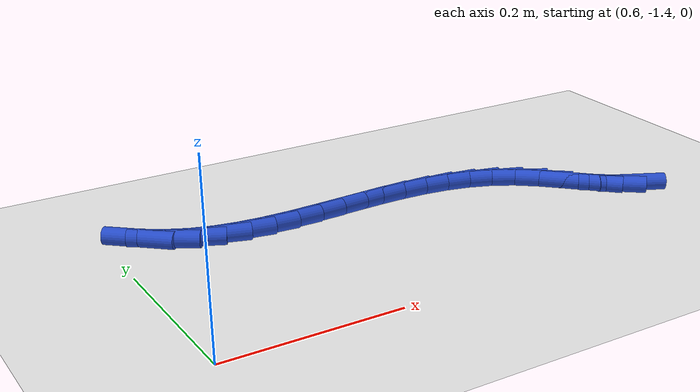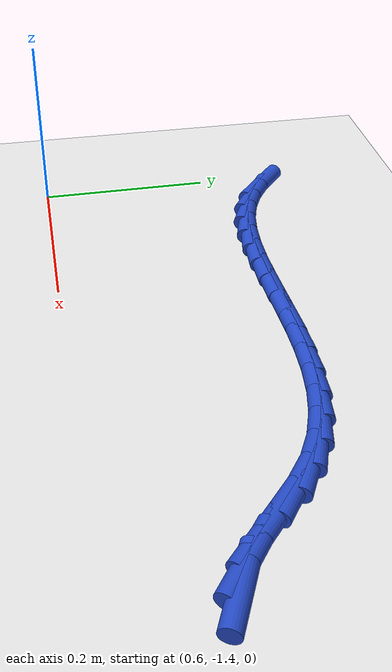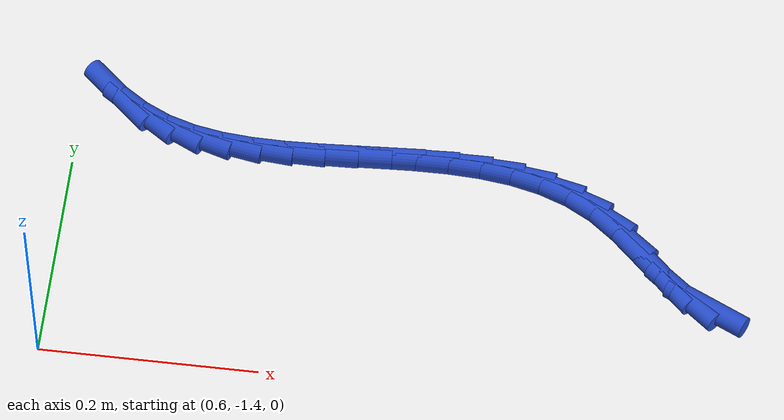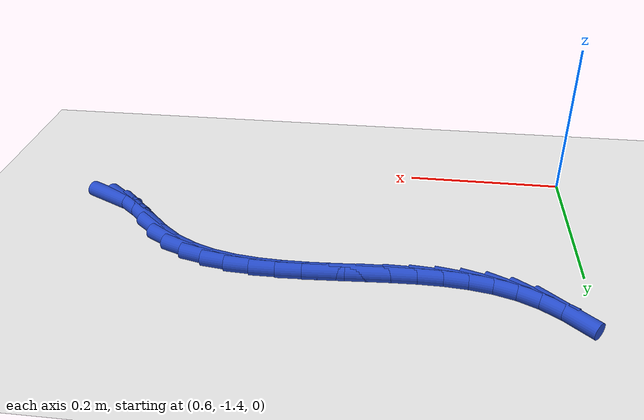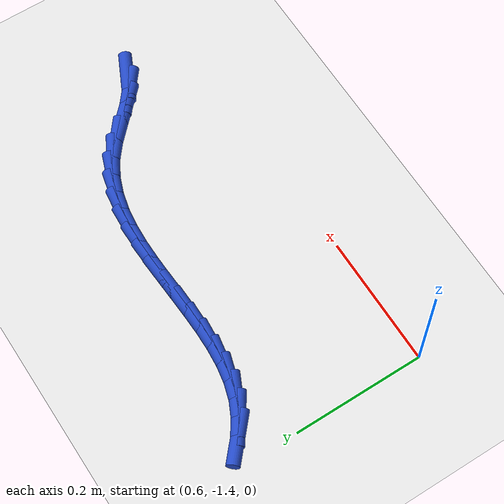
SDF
<sdf version="1.6">
 <world name="default">
  <model name="ground_plane">
   <static>1</static>
   <link name="link">
    <collision name="collision">
     <geometry><plane><normal>0 0 1</normal><size>100 100</size></plane></geometry>
     <surface><friction><ode><mu>100</mu><mu2>50</mu2></ode></friction></surface>
    </collision>
    <visual name="visual">
     <cast_shadows>0</cast_shadows>
     <geometry><plane><normal>0 0 1</normal><size>100 100</size></plane></geometry>
     <material>
      <script><uri>file://media/materials/scripts/gazebo.material</uri><name>Gazebo/WhiteGlow</name></script>
     </material>
    </visual>
   </link>
  </model>
  <model name="line">
   <link name="link_193">
    <pose>1.1923396283588337 -1.2899055582572467 0.01 0 1.57 -0.45132659616862847</pose>
    <collision name="collision">
     <geometry><cylinder><radius>0.01</radius><length>0.08</length></cylinder></geometry>
    </collision>
    <visual name="visual">
     <material>
      <script><name>Gazebo/Blue</name><uri>file://media/materials/scripts/gazebo.material</uri></script>
     </material>
     <geometry><cylinder><radius>0.01</radius><length>0.08</length></cylinder></geometry>
    </visual>
   </link>
   <link name="link_194">
    <pose>1.1708632571953506 -1.2794961273222218 0.01 0 1.57 -0.6828482703122764</pose>
    <collision name="collision">
     <geometry><cylinder><radius>0.01</radius><length>0.08</length></cylinder></geometry>
    </collision>
    <visual name="visual">
     <material>
      <script><name>Gazebo/Blue</name><uri>file://media/materials/scripts/gazebo.material</uri></script>
     </material>
     <geometry><cylinder><radius>0.01</radius><length>0.08</length></cylinder></geometry>
    </visual>
   </link>
   <link name="link_195">
    <pose>1.1498918307385502 -1.2624383232011847 0.01 0 1.57 -0.7771788397043755</pose>
    <collision name="collision">
     <geometry><cylinder><radius>0.01</radius><length>0.08</length></cylinder></geometry>
    </collision>
    <visual name="visual">
     <material>
      <script><name>Gazebo/Blue</name><uri>file://media/materials/scripts/gazebo.material</uri></script>
     </material>
     <geometry><cylinder><radius>0.01</radius><length>0.08</length></cylinder></geometry>
    </visual>
   </link>
   <link name="link_196">
    <pose>1.1287961307900996 -1.2416865886087731 0.01 0 1.57 -0.7710720933657769</pose>
    <collision name="collision">
     <geometry><cylinder><radius>0.01</radius><length>0.08</length></cylinder></geometry>
    </collision>
    <visual name="visual">
     <material>
      <script><name>Gazebo/Blue</name><uri>file://media/materials/scripts/gazebo.material</uri></script>
     </material>
     <geometry><cylinder><radius>0.01</radius><length>0.08</length></cylinder></geometry>
    </visual>
   </link>
   <link name="link_197">
    <pose>1.106907977687709 -1.2204167620470683 0.01 0 1.57 -0.6735662271076248</pose>
    <collision name="collision">
     <geometry><cylinder><radius>0.01</radius><length>0.08</length></cylinder></geometry>
    </collision>
    <visual name="visual">
     <material>
      <script><name>Gazebo/Blue</name><uri>file://media/materials/scripts/gazebo.material</uri></script>
     </material>
     <geometry><cylinder><radius>0.01</radius><length>0.08</length></cylinder></geometry>
    </visual>
   </link>
   <link name="link_198">
    <pose>1.0835636999190172 -1.2017862711441725 0.01 0 1.57 -0.5132673574012615</pose>
    <collision name="collision">
     <geometry><cylinder><radius>0.01</radius><length>0.08</length></cylinder></geometry>
    </collision>
    <visual name="visual">
     <material>
      <script><name>Gazebo/Blue</name><uri>file://media/materials/scripts/gazebo.material</uri></script>
     </material>
     <geometry><cylinder><radius>0.01</radius><length>0.08</length></cylinder></geometry>
    </visual>
   </link>
   <link name="link_199">
    <pose>1.058426518979004 -1.1876175422391284 0.01 0 1.57 -0.3612810352235677</pose>
    <collision name="collision">
     <geometry><cylinder><radius>0.01</radius><length>0.08</length></cylinder></geometry>
    </collision>
    <visual name="visual">
     <material>
      <script><name>Gazebo/Blue</name><uri>file://media/materials/scripts/gazebo.material</uri></script>
     </material>
     <geometry><cylinder><radius>0.01</radius><length>0.08</length></cylinder></geometry>
    </visual>
   </link>
   <link name="link_200">
    <pose>1.0317017460316702 -1.1775191568022634 0.01 0 1.57 -0.2319836037362705</pose>
    <collision name="collision">
     <geometry><cylinder><radius>0.01</radius><length>0.08</length></cylinder></geometry>
    </collision>
    <visual name="visual">
     <material>
      <script><name>Gazebo/Blue</name><uri>file://media/materials/scripts/gazebo.material</uri></script>
     </material>
     <geometry><cylinder><radius>0.01</radius><length>0.08</length></cylinder></geometry>
    </visual>
   </link>
   <link name="link_201">
    <pose>1.0036457221892685 -1.1708912946398482 0.01 0 1.57 -0.1282668028201163</pose>
    <collision name="collision">
     <geometry><cylinder><radius>0.01</radius><length>0.08</length></cylinder></geometry>
    </collision>
    <visual name="visual">
     <material>
      <script><name>Gazebo/Blue</name><uri>file://media/materials/scripts/gazebo.material</uri></script>
     </material>
     <geometry><cylinder><radius>0.01</radius><length>0.08</length></cylinder></geometry>
    </visual>
   </link>
   <link name="link_202">
    <pose>0.9745147885640536 -1.1671341355581548 0.01 0 1.57 -0.04958539451750135</pose>
    <collision name="collision">
     <geometry><cylinder><radius>0.01</radius><length>0.08</length></cylinder></geometry>
    </collision>
    <visual name="visual">
     <material>
      <script><name>Gazebo/Blue</name><uri>file://media/materials/scripts/gazebo.material</uri></script>
     </material>
     <geometry><cylinder><radius>0.01</radius><length>0.08</length></cylinder></geometry>
    </visual>
   </link>
   <link name="link_203">
    <pose>0.9445652862682786 -1.1656478593634547 0.01 0 1.57 0.006056170538094911</pose>
    <collision name="collision">
     <geometry><cylinder><radius>0.01</radius><length>0.08</length></cylinder></geometry>
    </collision>
    <visual name="visual">
     <material>
      <script><name>Gazebo/Blue</name><uri>file://media/materials/scripts/gazebo.material</uri></script>
     </material>
     <geometry><cylinder><radius>0.01</radius><length>0.08</length></cylinder></geometry>
    </visual>
   </link>
   <link name="link_204">
    <pose>0.9140535564141962 -1.1658326458620194 0.01 0 1.57 0.04073430619035559</pose>
    <collision name="collision">
     <geometry><cylinder><radius>0.01</radius><length>0.08</length></cylinder></geometry>
    </collision>
    <visual name="visual">
     <material>
      <script><name>Gazebo/Blue</name><uri>file://media/materials/scripts/gazebo.material</uri></script>
     </material>
     <geometry><cylinder><radius>0.01</radius><length>0.08</length></cylinder></geometry>
    </visual>
   </link>
   <link name="link_205">
    <pose>0.8832359401140621 -1.1670886748601201 0.01 0 1.57 0.05590573118660235</pose>
    <collision name="collision">
     <geometry><cylinder><radius>0.01</radius><length>0.08</length></cylinder></geometry>
    </collision>
    <visual name="visual">
     <material>
      <script><name>Gazebo/Blue</name><uri>file://media/materials/scripts/gazebo.material</uri></script>
     </material>
     <geometry><cylinder><radius>0.01</radius><length>0.08</length></cylinder></geometry>
    </visual>
   </link>
   <link name="link_206">
    <pose>0.8523687784801288 -1.168816126164029 0.01 0 1.57 0.0521065524361564</pose>
    <collision name="collision">
     <geometry><cylinder><radius>0.01</radius><length>0.08</length></cylinder></geometry>
    </collision>
    <visual name="visual">
     <material>
      <script><name>Gazebo/Blue</name><uri>file://media/materials/scripts/gazebo.material</uri></script>
     </material>
     <geometry><cylinder><radius>0.01</radius><length>0.08</length></cylinder></geometry>
    </visual>
   </link>
   <link name="link_207">
    <pose>0.8217084126246501 -1.170415179580017 0.01 0 1.57 0.028830262775778246</pose>
    <collision name="collision">
     <geometry><cylinder><radius>0.01</radius><length>0.08</length></cylinder></geometry>
    </collision>
    <visual name="visual">
     <material>
      <script><name>Gazebo/Blue</name><uri>file://media/materials/scripts/gazebo.material</uri></script>
     </material>
     <geometry><cylinder><radius>0.01</radius><length>0.08</length></cylinder></geometry>
    </visual>
   </link>
   <link name="link_208">
    <pose>0.7915111836598795 -1.1712860149143562 0.01 0 1.57 -0.015508859032078265</pose>
    <collision name="collision">
     <geometry><cylinder><radius>0.01</radius><length>0.08</length></cylinder></geometry>
    </collision>
    <visual name="visual">
     <material>
      <script><name>Gazebo/Blue</name><uri>file://media/materials/scripts/gazebo.material</uri></script>
     </material>
     <geometry><cylinder><radius>0.01</radius><length>0.08</length></cylinder></geometry>
    </visual>
   </link>
   <link name="link_209">
    <pose>0.7620334326980704 -1.1708288119733177 0.01 0 1.57 -0.0834861860893058</pose>
    <collision name="collision">
     <geometry><cylinder><radius>0.01</radius><length>0.08</length></cylinder></geometry>
    </collision>
    <visual name="visual">
     <material>
      <script><name>Gazebo/Blue</name><uri>file://media/materials/scripts/gazebo.material</uri></script>
     </material>
     <geometry><cylinder><radius>0.01</radius><length>0.08</length></cylinder></geometry>
    </visual>
   </link>
   <link name="link_210">
    <pose>0.7335315008514764 -1.1684437505631728 0.01 0 1.57 -0.17824144898908043</pose>
    <collision name="collision">
     <geometry><cylinder><radius>0.01</radius><length>0.08</length></cylinder></geometry>
    </collision>
    <visual name="visual">
     <material>
      <script><name>Gazebo/Blue</name><uri>file://media/materials/scripts/gazebo.material</uri></script>
     </material>
     <geometry><cylinder><radius>0.01</radius><length>0.08</length></cylinder></geometry>
    </visual>
   </link>
   <link name="link_211">
    <pose>0.7062617292323516 -1.163531010490194 0.01 0 1.57 -0.3023049531685426</pose>
    <collision name="collision">
     <geometry><cylinder><radius>0.01</radius><length>0.08</length></cylinder></geometry>
    </collision>
    <visual name="visual">
     <material>
      <script><name>Gazebo/Blue</name><uri>file://media/materials/scripts/gazebo.material</uri></script>
     </material>
     <geometry><cylinder><radius>0.01</radius><length>0.08</length></cylinder></geometry>
    </visual>
   </link>
   <link name="link_212">
    <pose>0.6804804589529494 -1.155490771560652 0.01 0 1.57 -0.45294258970597445</pose>
    <collision name="collision">
     <geometry><cylinder><radius>0.01</radius><length>0.08</length></cylinder></geometry>
    </collision>
    <visual name="visual">
     <material>
      <script><name>Gazebo/Blue</name><uri>file://media/materials/scripts/gazebo.material</uri></script>
     </material>
     <geometry><cylinder><radius>0.01</radius><length>0.08</length></cylinder></geometry>
    </visual>
   </link>
   <link name="link_213">
    <pose>0.656422270610381 -1.1437819048145004 0.01 0 1.57 -0.6007740144242739</pose>
    <collision name="collision">
     <geometry><cylinder><radius>0.01</radius><length>0.08</length></cylinder></geometry>
    </collision>
    <visual name="visual">
     <material>
      <script><name>Gazebo/Blue</name><uri>file://media/materials/scripts/gazebo.material</uri></script>
     </material>
     <geometry><cylinder><radius>0.01</radius><length>0.08</length></cylinder></geometry>
    </visual>
   </link>
   <link name="link_214">
    <pose>0.6340929987810168 -1.128480242152689 0.01 0 1.57 -0.7272263908868564</pose>
    <collision name="collision">
     <geometry><cylinder><radius>0.01</radius><length>0.08</length></cylinder></geometry>
    </collision>
    <visual name="visual">
     <material>
      <script><name>Gazebo/Blue</name><uri>file://media/materials/scripts/gazebo.material</uri></script>
     </material>
     <geometry><cylinder><radius>0.01</radius><length>0.08</length></cylinder></geometry>
    </visual>
   </link>
  </model>
 </world>
</sdf>
